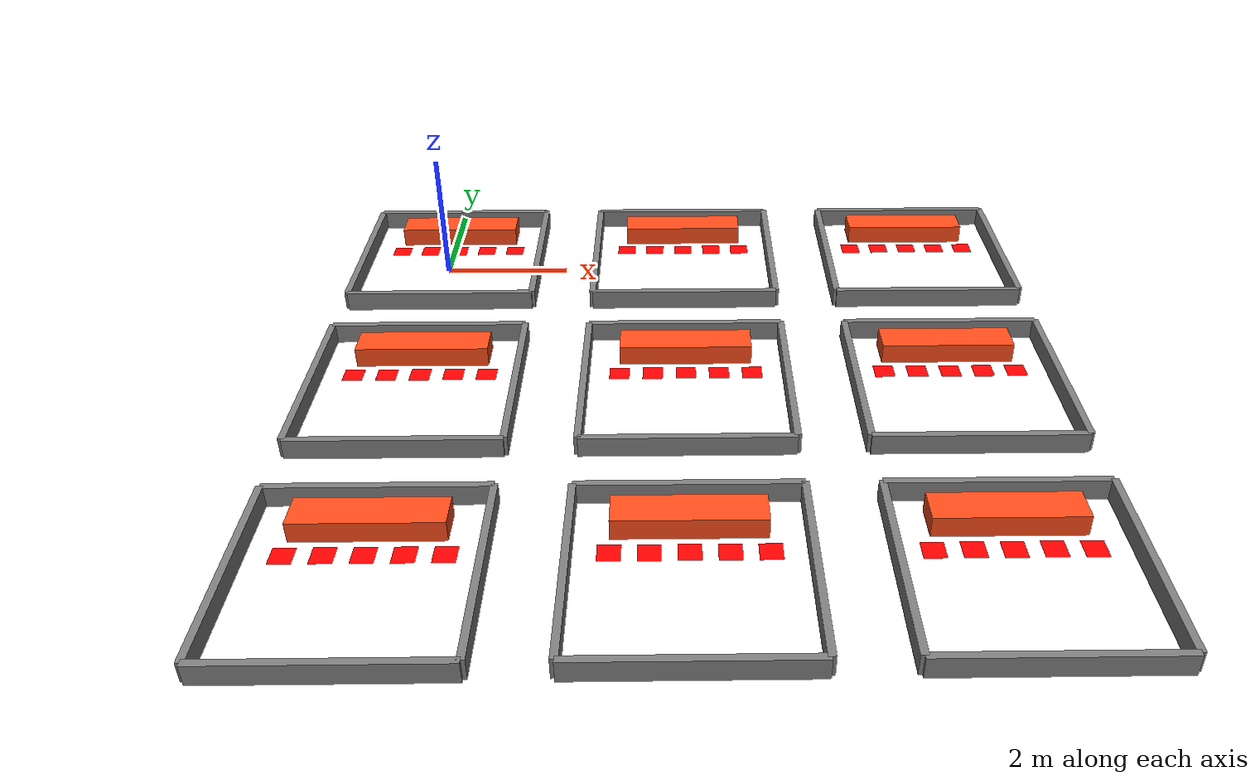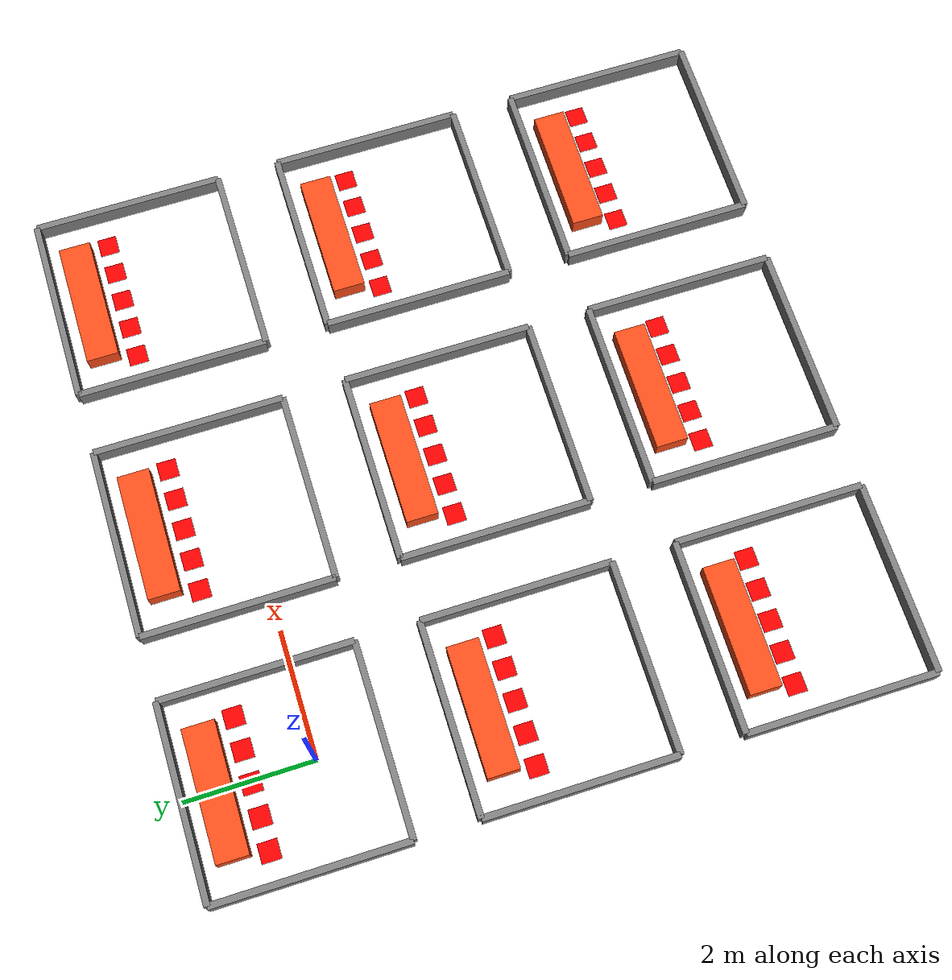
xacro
<?xml version="1.0"?>
<robot xmlns:xacro="http://www.ros.org/wiki/xacro"  name="table">

    <material name="red">
        <color rgba="1 0 0 1"/>
    </material>
    <material name="gray">
        <color rgba="0.5 0.5 0.5 1"/>
    </material>
    <material name="orange">
        <color rgba="1 0.3 0.1 1"/>
    </material>
    <!-- ✅ 載入桌子模型 -->
    <link name="base_link"/>

    <xacro:include filename="goal.xacro"/>
    <xacro:include filename="table.xacro"/>
    <xacro:include filename="wall.xacro"/>
    <!-- ========= 區域 macro ========= -->
    <xacro:macro name="create_zone" params="parent offset_x offset_y parent_two">
        <link name="${parent}"/>
        <joint name="${parent_two}" type="fixed">
            <parent link="base_link"/>
            <child link="${parent}"/>
            <origin xyz="${offset_x} ${offset_y} 0" rpy="0 0 0"/>
        </joint>

        <!-- 桌子 -->
        <xacro:table parent="${parent}" material_name="orange" xyz="${offset_x + 1} ${offset_y + 1.5} 0"/>

        <!-- 牆壁 -->
        <xacro:wall parent="${parent}" material_name="gray" xyz="${offset_x + 0} ${offset_y + 0} 0"/>

        <!-- 目標紅點 -->
        <xacro:goal parent="base_link" xyz="${offset_x - 1} ${offset_y + 1} -0.15" material_name="red"/>
        <xacro:goal parent="base_link" xyz="${offset_x - 0.5} ${offset_y + 1} -0.15" material_name="red"/>
        <xacro:goal parent="base_link" xyz="${offset_x + 0} ${offset_y + 1} -0.15" material_name="red"/>
        <xacro:goal parent="base_link" xyz="${offset_x + 0.5} ${offset_y + 1} -0.15" material_name="red"/>
        <xacro:goal parent="base_link" xyz="${offset_x + 1} ${offset_y + 1} -0.15" material_name="red"/>

        <!-- 鏡頭 (目前註解掉) -->
    </xacro:macro>

    <xacro:create_zone parent="wall1_link" offset_x="0" offset_y="0" parent_two="wall1_link"/>
    <xacro:create_zone parent="wall2_link" offset_x="4" offset_y="0" parent_two="wall2_link"/>
    <xacro:create_zone parent="wall3_link" offset_x="8" offset_y="0" parent_two="wall3_link"/>
    <xacro:create_zone parent="wall4_link" offset_x="0" offset_y="-4" parent_two="wall4_link"/>
    <xacro:create_zone parent="wall5_link" offset_x="4" offset_y="-4" parent_two="wall5_link"/>
    <xacro:create_zone parent="wall6_link" offset_x="8" offset_y="-4" parent_two="wall6_link"/>
    <xacro:create_zone parent="wall7_link" offset_x="0" offset_y="-8" parent_two="wall7_link"/>
    <xacro:create_zone parent="wall8_link" offset_x="4" offset_y="-8" parent_two="wall8_link"/>
    <xacro:create_zone parent="wall9_link" offset_x="8" offset_y="-8" parent_two="wall9_link"/>

</robot>

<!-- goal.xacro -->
<robot xmlns:xacro="http://www.ros.org/wiki/xacro">
  <xacro:macro name="goal" params="parent material_name xyz">
    <!-- 前牆 -->
    <joint name="goal_front_joint_${xyz}" type="fixed">
        <parent link="${parent}"/>
        <child link="goal_front_${xyz}"/>
        <origin xyz="${xyz}"/>
    </joint>
    <link name="goal_front_${xyz}">
        <visual>
          <origin xyz="0 0 0"/>
            <geometry>
                <box size="0.3 0.3 0.0001"/>
            </geometry>
            <material name="red"/>
        </visual>
        <collision>
            <origin xyz="0 0 0"/>
            <geometry>
                <box size="0.3 0.3 0.0001"/>
            </geometry>
        </collision>
        <inertial>
          <mass value="10"/> <!-- 任意合理質量 -->
          <inertia ixx="1" ixy="0" ixz="0" iyy="1" iyz="0" izz="1"/>
          <origin xyz="0 0 0" rpy="0 0 0"/>
        </inertial>
    </link>
    <gazebo reference="goal_front_${xyz}">
        <material>Gazebo/Red</material>
        <static>true</static>
    </gazebo>
  </xacro:macro>
</robot>

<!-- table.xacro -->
<robot xmlns:xacro="http://www.ros.org/wiki/xacro">
    <xacro:macro name="table" params="parent material_name xyz">
        <!-- table LINK -->
        <joint name="table_joint_${xyz}" type="fixed">
            <parent link="${parent}"/>
            <child link="table_${xyz}"/>
            <origin xyz="0 1.5 0"/>
        </joint>

        <link name="table_${xyz}">
        <visual>
            <origin xyz="0 0 0"/>
            <geometry>
                <box size="2 0.5 0.3"/>
            </geometry>
            <material name="orange"/>
        </visual>
        <collision>
            <origin xyz="0 0 0"/>
            <geometry>
                <box size="2 0.5 0.3"/>
            </geometry>
        </collision>
        <inertial>
            <mass value="100"/> <!-- 任意合理質量 -->
            <inertia ixx="1" ixy="0" ixz="0" iyy="1" iyz="0" izz="1"/>
            <origin xyz="0 0 0" rpy="0 0 0"/>
        </inertial>
        </link>

        <gazebo reference="table">
            <material>Gazebo/Orange</material>
            <static>true</static>
        </gazebo>
    </xacro:macro>
</robot>

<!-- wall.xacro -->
<robot xmlns:xacro="http://www.ros.org/wiki/xacro">
  <xacro:macro name="wall" params="parent material_name xyz">
    <!-- 前牆 -->
    <joint name="wall_front_joint_${xyz}" type="fixed">
        <parent link="${parent}"/>
        <child link="wall_front_${xyz}"/>
        <origin xyz="0 2 0"/>
    </joint>
    <link name="wall_front_${xyz}">
        <visual>
          <origin xyz="0 0 0"/>
            <geometry>
                <box size="3 0.1 0.3"/>
            </geometry>
            <material name="gray"/>
        </visual>
        <collision>
            <origin xyz="0 0 0"/>
            <geometry>
                <box size="3 0.1 0.3"/>
            </geometry>
        </collision>
        <inertial>
          <mass value="10"/> <!-- 任意合理質量 -->
          <inertia ixx="1" ixy="0" ixz="0" iyy="1" iyz="0" izz="1"/>
          <origin xyz="0 0 0" rpy="0 0 0"/>
        </inertial>
    </link>
    <gazebo reference="wall_front_${xyz}">
        <material>Gazebo/Grey</material>
        <static>true</static>
    </gazebo>

    <!-- 後牆 -->
    <joint name="wall_back_joint_${xyz}" type="fixed">
        <parent link="${parent}"/>
        <child link="wall_back_${xyz}"/>
        <origin xyz="0 -1 0"/>
    </joint>
    <link name="wall_back_${xyz}">
        <visual>
            <origin xyz="0 0 0"/>
            <geometry>
                <box size="3 0.1 0.3"/>
            </geometry>
            <material name="gray"/>
        </visual>
        <collision>
            <origin xyz="0 0 0"/>
            <geometry>
                <box size="3 0.1 0.3"/>
            </geometry>
        </collision>
        <inertial>
          <mass value="100"/>
          <inertia ixx="1" ixy="0" ixz="0" iyy="1" iyz="0" izz="1"/>
          <origin xyz="0 0 0" rpy="0 0 0"/>
        </inertial>
    </link>
    <gazebo reference="wall_back_${xyz}">
        <material>Gazebo/Grey</material>
        <static>true</static>
    </gazebo>

    <!-- 左牆 -->
    <joint name="wall_left_joint_${xyz}" type="fixed">
        <parent link="${parent}"/>
        <child link="wall_left_${xyz}"/>
        <origin xyz="-1.5 0.5 0"/>
    </joint>
    <link name="wall_left_${xyz}">
        <visual>
            <origin xyz="0 0 0"/>
            <geometry>
                <box size="0.1 3 0.3"/>
            </geometry>
            <material name="gray"/>
        </visual>
        <collision>
            <origin xyz="0 0 0"/>
            <geometry>
                <box size="0.1 3 0.3"/>
            </geometry>
        </collision>
        <inertial>
          <mass value="10"/>
          <inertia ixx="1" ixy="0" ixz="0" iyy="1" iyz="0" izz="1"/>
          <origin xyz="0 0 0" rpy="0 0 0"/>
        </inertial>
    </link>
    <gazebo reference="wall_left_${xyz}">
        <material>Gazebo/Grey</material>
        <static>true</static>
    </gazebo>

    <!-- 右牆 -->
    <joint name="wall_right_joint_${xyz}" type="fixed">
        <parent link="${parent}"/>
        <child link="wall_right_${xyz}"/>
        <origin xyz="1.5 0.5 0"/>
    </joint>
    <link name="wall_right_${xyz}">
        <visual>
            <origin xyz="0 0 0"/>
            <geometry>
                <box size="0.1 3 0.3"/>
            </geometry>
            <material name="gray"/>
        </visual>
        <collision>
            <origin xyz="0 0 0"/>
            <geometry>
                <box size="0.1 3 0.3"/>
            </geometry>
        </collision>
        <inertial>
          <mass value="10"/>
          <inertia ixx="1" ixy="0" ixz="0" iyy="1" iyz="0" izz="1"/>
          <origin xyz="0 0 0" rpy="0 0 0"/>
        </inertial>
    </link>
    <gazebo reference="wall_right_${xyz}">
        <material>Gazebo/Grey</material>
        <static>true</static>
    </gazebo>
  </xacro:macro>
</robot>
